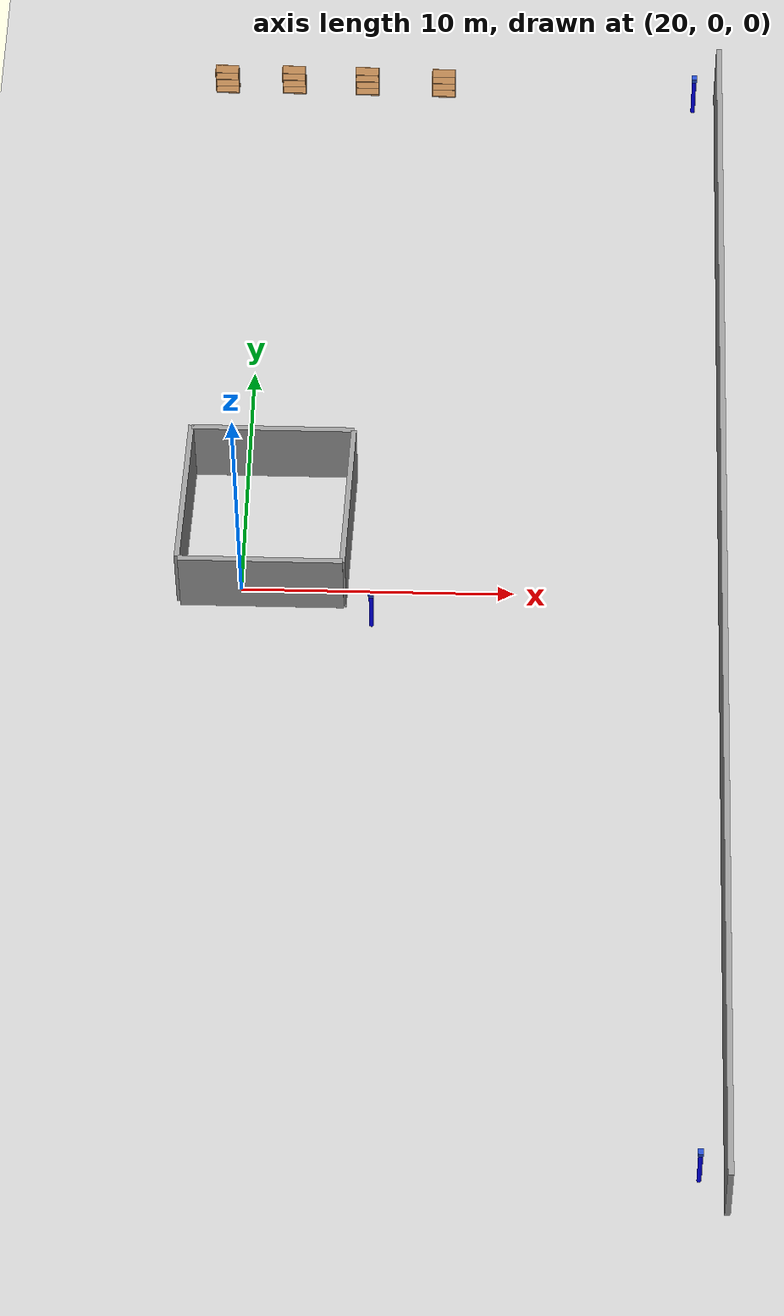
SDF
<sdf version="1.7">
 <world name="default">
  <model name="ground_plane">
   <static>1</static>
   <link name="link">
    <collision name="collision">
     <geometry><plane><normal>0 0 1</normal><size>100 100</size></plane></geometry>
     <surface>
      <contact><collide_bitmask>65535</collide_bitmask></contact>
      <friction><ode><mu>100</mu><mu2>50</mu2></ode></friction>
     </surface>
    </collision>
    <visual name="visual">
     <cast_shadows>0</cast_shadows>
     <geometry><plane><normal>0 0 1</normal><size>100 100</size></plane></geometry>
     <material>
      <script><uri>file://media/materials/scripts/gazebo.material</uri><name>Gazebo/Grey</name></script>
     </material>
    </visual>
   </link>
  </model>
  <model name="grey_wall_long_clone">
   <static>1</static>
   <link name="link">
    <pose>0 0 1.4 0 -0 0</pose>
    <collision name="collision"><geometry><box><size>50 0.2 2.8</size></box></geometry></collision>
    <visual name="visual">
     <cast_shadows>0</cast_shadows>
     <geometry><box><size>50 0.2 2.8</size></box></geometry>
     <material>
      <script>
       <uri>model://grey_wall_long/materials/scripts</uri>
       <uri>model://grey_wall_long/materials/textures</uri>
       <name>vrc/grey_wall_long</name>
      </script>
     </material>
    </visual>
   </link>
   <pose>37.61 -0.557863 0 0 0 -1.56707</pose>
  </model>
  <model name="grey_wall_media_clone_2_clone">
   <static>1</static>
   <link name="link">
    <pose>0 0 1.4 0 -0 0</pose>
    <collision name="collision"><geometry><box><size>6 0.2 2.8</size></box></geometry></collision>
    <visual name="visual">
     <cast_shadows>0</cast_shadows>
     <geometry><box><size>6 0.2 2.8</size></box></geometry>
     <material>
      <script>
       <uri>model://grey_wall_media/materials/scripts</uri>
       <uri>model://grey_wall_media/materials/textures</uri>
       <name>vrc/grey_wall_media</name>
      </script>
     </material>
    </visual>
   </link>
   <pose>20.7771 -0.668211 0.00987 0 -0 0</pose>
  </model>
  <model name="grey_wall_media_clone_2_clone_clone">
   <static>1</static>
   <link name="link">
    <pose>0 0 1.4 0 -0 0</pose>
    <collision name="collision"><geometry><box><size>6 0.2 2.8</size></box></geometry></collision>
    <visual name="visual">
     <cast_shadows>0</cast_shadows>
     <geometry><box><size>6 0.2 2.8</size></box></geometry>
     <material>
      <script>
       <uri>model://grey_wall_media/materials/scripts</uri>
       <uri>model://grey_wall_media/materials/textures</uri>
       <name>vrc/grey_wall_media</name>
      </script>
     </material>
    </visual>
   </link>
   <pose>20.9663 5.32207 0.00987 0 -0 0</pose>
  </model>
  <model name="grey_wall_media_clone_2_clone_clone_0">
   <static>1</static>
   <link name="link">
    <pose>0 0 1.4 0 -0 0</pose>
    <collision name="collision"><geometry><box><size>6 0.2 2.8</size></box></geometry></collision>
    <visual name="visual">
     <cast_shadows>0</cast_shadows>
     <geometry><box><size>6 0.2 2.8</size></box></geometry>
     <material>
      <script>
       <uri>model://grey_wall_media/materials/scripts</uri>
       <uri>model://grey_wall_media/materials/textures</uri>
       <name>vrc/grey_wall_media</name>
      </script>
     </material>
    </visual>
   </link>
   <pose>17.8444 2.39168 0.00987 0 0 -1.60343</pose>
  </model>
  <model name="grey_wall_media_clone_2_clone_clone_0_clone">
   <static>1</static>
   <link name="link">
    <pose>0 0 1.4 0 -0 0</pose>
    <collision name="collision"><geometry><box><size>6 0.2 2.8</size></box></geometry></collision>
    <visual name="visual">
     <cast_shadows>0</cast_shadows>
     <geometry><box><size>6 0.2 2.8</size></box></geometry>
     <material>
      <script>
       <uri>model://grey_wall_media/materials/scripts</uri>
       <uri>model://grey_wall_media/materials/textures</uri>
       <name>vrc/grey_wall_media</name>
      </script>
     </material>
    </visual>
   </link>
   <pose>23.857 2.28002 0.00987 0 0 -1.60343</pose>
  </model>
  <model name="Bookshelf_0">
   <static>1</static>
   <link name="link">
    <inertial><mass>1</mass></inertial>
    <collision name="back">
     <pose>0 0.005 0.6 0 -0 0</pose>
     <geometry><box><size>0.9 0.01 1.2</size></box></geometry>
    </collision>
    <visual name="visual1">
     <pose>0 0.005 0.6 0 -0 0</pose>
     <geometry><box><size>0.9 0.01 1.2</size></box></geometry>
     <material>
      <diffuse>1 1 1 1</diffuse>
      <script><uri>file://media/materials/scripts/gazebo.material</uri><name>Gazebo/Wood</name></script>
      <pbr><metal><albedo_map>model://Bookshelf/bookshelf_diffuse.jpg</albedo_map></metal></pbr>
     </material>
    </visual>
    <collision name="left_side">
     <pose>0.45 -0.195 0.6 0 -0 0</pose>
     <geometry><box><size>0.02 0.4 1.2</size></box></geometry>
    </collision>
    <visual name="visual2">
     <pose>0.45 -0.195 0.6 0 -0 0</pose>
     <geometry><box><size>0.02 0.4 1.2</size></box></geometry>
     <material>
      <diffuse>1 1 1 1</diffuse>
      <script><uri>file://media/materials/scripts/gazebo.material</uri><name>Gazebo/Wood</name></script>
      <pbr><metal><albedo_map>model://Bookshelf/bookshelf_diffuse.jpg</albedo_map></metal></pbr>
     </material>
    </visual>
    <collision name="right_side">
     <pose>-0.45 -0.195 0.6 0 -0 0</pose>
     <geometry><box><size>0.02 0.4 1.2</size></box></geometry>
    </collision>
    <visual name="visual3">
     <pose>-0.45 -0.195 0.6 0 -0 0</pose>
     <geometry><box><size>0.02 0.4 1.2</size></box></geometry>
     <material>
      <diffuse>1 1 1 1</diffuse>
      <script><uri>file://media/materials/scripts/gazebo.material</uri><name>Gazebo/Wood</name></script>
      <pbr><metal><albedo_map>model://Bookshelf/bookshelf_diffuse.jpg</albedo_map></metal></pbr>
     </material>
    </visual>
    <collision name="bottom">
     <pose>0 -0.195 0.03 0 -0 0</pose>
     <geometry><box><size>0.88 0.4 0.06</size></box></geometry>
    </collision>
    <visual name="visual4">
     <pose>0 -0.195 0.03 0 -0 0</pose>
     <geometry><box><size>0.88 0.4 0.06</size></box></geometry>
     <material>
      <diffuse>1 1 1 1</diffuse>
      <script><uri>file://media/materials/scripts/gazebo.material</uri><name>Gazebo/Wood</name></script>
      <pbr><metal><albedo_map>model://Bookshelf/bookshelf_diffuse.jpg</albedo_map></metal></pbr>
     </material>
    </visual>
    <collision name="top">
     <pose>0 -0.195 1.19 0 -0 0</pose>
     <geometry><box><size>0.88 0.4 0.02</size></box></geometry>
    </collision>
    <visual name="visual5">
     <pose>0 -0.195 1.19 0 -0 0</pose>
     <geometry><box><size>0.88 0.4 0.02</size></box></geometry>
     <material>
      <diffuse>1 1 1 1</diffuse>
      <script><uri>file://media/materials/scripts/gazebo.material</uri><name>Gazebo/Wood</name></script>
      <pbr><metal><albedo_map>model://Bookshelf/bookshelf_diffuse.jpg</albedo_map></metal></pbr>
     </material>
    </visual>
    <collision name="low_shelf">
     <pose>0 -0.195 0.43 0 -0 0</pose>
     <geometry><box><size>0.88 0.4 0.02</size></box></geometry>
    </collision>
    <visual name="visual6">
     <pose>0 -0.195 0.43 0 -0 0</pose>
     <geometry><box><size>0.88 0.4 0.02</size></box></geometry>
     <material>
      <diffuse>1 1 1 1</diffuse>
      <script><uri>file://media/materials/scripts/gazebo.material</uri><name>Gazebo/Wood</name></script>
      <pbr><metal><albedo_map>model://Bookshelf/bookshelf_diffuse.jpg</albedo_map></metal></pbr>
     </material>
    </visual>
    <collision name="high_shelf">
     <pose>0 -0.195 0.8 0 -0 0</pose>
     <geometry><box><size>0.88 0.4 0.02</size></box></geometry>
    </collision>
    <visual name="visual7">
     <pose>0 -0.195 0.8 0 -0 0</pose>
     <geometry><box><size>0.88 0.4 0.02</size></box></geometry>
     <material>
      <diffuse>1 1 1 1</diffuse>
      <script><uri>file://media/materials/scripts/gazebo.material</uri><name>Gazebo/Wood</name></script>
      <pbr><metal><albedo_map>model://Bookshelf/bookshelf_diffuse.jpg</albedo_map></metal></pbr>
     </material>
    </visual>
   </link>
   <pose>26.7566 24.5208 0 0 -0 0</pose>
  </model>
  <model name="Bookshelf_0_clone">
   <static>1</static>
   <link name="link">
    <inertial><mass>1</mass></inertial>
    <collision name="back">
     <pose>0 0.005 0.6 0 -0 0</pose>
     <geometry><box><size>0.9 0.01 1.2</size></box></geometry>
    </collision>
    <visual name="visual1">
     <pose>0 0.005 0.6 0 -0 0</pose>
     <geometry><box><size>0.9 0.01 1.2</size></box></geometry>
     <material>
      <diffuse>1 1 1 1</diffuse>
      <script><uri>file://media/materials/scripts/gazebo.material</uri><name>Gazebo/Wood</name></script>
      <pbr><metal><albedo_map>model://Bookshelf/bookshelf_diffuse.jpg</albedo_map></metal></pbr>
     </material>
    </visual>
    <collision name="left_side">
     <pose>0.45 -0.195 0.6 0 -0 0</pose>
     <geometry><box><size>0.02 0.4 1.2</size></box></geometry>
    </collision>
    <visual name="visual2">
     <pose>0.45 -0.195 0.6 0 -0 0</pose>
     <geometry><box><size>0.02 0.4 1.2</size></box></geometry>
     <material>
      <diffuse>1 1 1 1</diffuse>
      <script><uri>file://media/materials/scripts/gazebo.material</uri><name>Gazebo/Wood</name></script>
      <pbr><metal><albedo_map>model://Bookshelf/bookshelf_diffuse.jpg</albedo_map></metal></pbr>
     </material>
    </visual>
    <collision name="right_side">
     <pose>-0.45 -0.195 0.6 0 -0 0</pose>
     <geometry><box><size>0.02 0.4 1.2</size></box></geometry>
    </collision>
    <visual name="visual3">
     <pose>-0.45 -0.195 0.6 0 -0 0</pose>
     <geometry><box><size>0.02 0.4 1.2</size></box></geometry>
     <material>
      <diffuse>1 1 1 1</diffuse>
      <script><uri>file://media/materials/scripts/gazebo.material</uri><name>Gazebo/Wood</name></script>
      <pbr><metal><albedo_map>model://Bookshelf/bookshelf_diffuse.jpg</albedo_map></metal></pbr>
     </material>
    </visual>
    <collision name="bottom">
     <pose>0 -0.195 0.03 0 -0 0</pose>
     <geometry><box><size>0.88 0.4 0.06</size></box></geometry>
    </collision>
    <visual name="visual4">
     <pose>0 -0.195 0.03 0 -0 0</pose>
     <geometry><box><size>0.88 0.4 0.06</size></box></geometry>
     <material>
      <diffuse>1 1 1 1</diffuse>
      <script><uri>file://media/materials/scripts/gazebo.material</uri><name>Gazebo/Wood</name></script>
      <pbr><metal><albedo_map>model://Bookshelf/bookshelf_diffuse.jpg</albedo_map></metal></pbr>
     </material>
    </visual>
    <collision name="top">
     <pose>0 -0.195 1.19 0 -0 0</pose>
     <geometry><box><size>0.88 0.4 0.02</size></box></geometry>
    </collision>
    <visual name="visual5">
     <pose>0 -0.195 1.19 0 -0 0</pose>
     <geometry><box><size>0.88 0.4 0.02</size></box></geometry>
     <material>
      <diffuse>1 1 1 1</diffuse>
      <script><uri>file://media/materials/scripts/gazebo.material</uri><name>Gazebo/Wood</name></script>
      <pbr><metal><albedo_map>model://Bookshelf/bookshelf_diffuse.jpg</albedo_map></metal></pbr>
     </material>
    </visual>
    <collision name="low_shelf">
     <pose>0 -0.195 0.43 0 -0 0</pose>
     <geometry><box><size>0.88 0.4 0.02</size></box></geometry>
    </collision>
    <visual name="visual6">
     <pose>0 -0.195 0.43 0 -0 0</pose>
     <geometry><box><size>0.88 0.4 0.02</size></box></geometry>
     <material>
      <diffuse>1 1 1 1</diffuse>
      <script><uri>file://media/materials/scripts/gazebo.material</uri><name>Gazebo/Wood</name></script>
      <pbr><metal><albedo_map>model://Bookshelf/bookshelf_diffuse.jpg</albedo_map></metal></pbr>
     </material>
    </visual>
    <collision name="high_shelf">
     <pose>0 -0.195 0.8 0 -0 0</pose>
     <geometry><box><size>0.88 0.4 0.02</size></box></geometry>
    </collision>
    <visual name="visual7">
     <pose>0 -0.195 0.8 0 -0 0</pose>
     <geometry><box><size>0.88 0.4 0.02</size></box></geometry>
     <material>
      <diffuse>1 1 1 1</diffuse>
      <script><uri>file://media/materials/scripts/gazebo.material</uri><name>Gazebo/Wood</name></script>
      <pbr><metal><albedo_map>model://Bookshelf/bookshelf_diffuse.jpg</albedo_map></metal></pbr>
     </material>
    </visual>
   </link>
   <pose>23.7282 24.54 0 0 -0 0</pose>
  </model>
  <model name="Bookshelf_0_clone_0">
   <static>1</static>
   <link name="link">
    <inertial><mass>1</mass></inertial>
    <collision name="back">
     <pose>0 0.005 0.6 0 -0 0</pose>
     <geometry><box><size>0.9 0.01 1.2</size></box></geometry>
    </collision>
    <visual name="visual1">
     <pose>0 0.005 0.6 0 -0 0</pose>
     <geometry><box><size>0.9 0.01 1.2</size></box></geometry>
     <material>
      <diffuse>1 1 1 1</diffuse>
      <script><uri>file://media/materials/scripts/gazebo.material</uri><name>Gazebo/Wood</name></script>
      <pbr><metal><albedo_map>model://Bookshelf/bookshelf_diffuse.jpg</albedo_map></metal></pbr>
     </material>
    </visual>
    <collision name="left_side">
     <pose>0.45 -0.195 0.6 0 -0 0</pose>
     <geometry><box><size>0.02 0.4 1.2</size></box></geometry>
    </collision>
    <visual name="visual2">
     <pose>0.45 -0.195 0.6 0 -0 0</pose>
     <geometry><box><size>0.02 0.4 1.2</size></box></geometry>
     <material>
      <diffuse>1 1 1 1</diffuse>
      <script><uri>file://media/materials/scripts/gazebo.material</uri><name>Gazebo/Wood</name></script>
      <pbr><metal><albedo_map>model://Bookshelf/bookshelf_diffuse.jpg</albedo_map></metal></pbr>
     </material>
    </visual>
    <collision name="right_side">
     <pose>-0.45 -0.195 0.6 0 -0 0</pose>
     <geometry><box><size>0.02 0.4 1.2</size></box></geometry>
    </collision>
    <visual name="visual3">
     <pose>-0.45 -0.195 0.6 0 -0 0</pose>
     <geometry><box><size>0.02 0.4 1.2</size></box></geometry>
     <material>
      <diffuse>1 1 1 1</diffuse>
      <script><uri>file://media/materials/scripts/gazebo.material</uri><name>Gazebo/Wood</name></script>
      <pbr><metal><albedo_map>model://Bookshelf/bookshelf_diffuse.jpg</albedo_map></metal></pbr>
     </material>
    </visual>
    <collision name="bottom">
     <pose>0 -0.195 0.03 0 -0 0</pose>
     <geometry><box><size>0.88 0.4 0.06</size></box></geometry>
    </collision>
    <visual name="visual4">
     <pose>0 -0.195 0.03 0 -0 0</pose>
     <geometry><box><size>0.88 0.4 0.06</size></box></geometry>
     <material>
      <diffuse>1 1 1 1</diffuse>
      <script><uri>file://media/materials/scripts/gazebo.material</uri><name>Gazebo/Wood</name></script>
      <pbr><metal><albedo_map>model://Bookshelf/bookshelf_diffuse.jpg</albedo_map></metal></pbr>
     </material>
    </visual>
    <collision name="top">
     <pose>0 -0.195 1.19 0 -0 0</pose>
     <geometry><box><size>0.88 0.4 0.02</size></box></geometry>
    </collision>
    <visual name="visual5">
     <pose>0 -0.195 1.19 0 -0 0</pose>
     <geometry><box><size>0.88 0.4 0.02</size></box></geometry>
     <material>
      <diffuse>1 1 1 1</diffuse>
      <script><uri>file://media/materials/scripts/gazebo.material</uri><name>Gazebo/Wood</name></script>
      <pbr><metal><albedo_map>model://Bookshelf/bookshelf_diffuse.jpg</albedo_map></metal></pbr>
     </material>
    </visual>
    <collision name="low_shelf">
     <pose>0 -0.195 0.43 0 -0 0</pose>
     <geometry><box><size>0.88 0.4 0.02</size></box></geometry>
    </collision>
    <visual name="visual6">
     <pose>0 -0.195 0.43 0 -0 0</pose>
     <geometry><box><size>0.88 0.4 0.02</size></box></geometry>
     <material>
      <diffuse>1 1 1 1</diffuse>
      <script><uri>file://media/materials/scripts/gazebo.material</uri><name>Gazebo/Wood</name></script>
      <pbr><metal><albedo_map>model://Bookshelf/bookshelf_diffuse.jpg</albedo_map></metal></pbr>
     </material>
    </visual>
    <collision name="high_shelf">
     <pose>0 -0.195 0.8 0 -0 0</pose>
     <geometry><box><size>0.88 0.4 0.02</size></box></geometry>
    </collision>
    <visual name="visual7">
     <pose>0 -0.195 0.8 0 -0 0</pose>
     <geometry><box><size>0.88 0.4 0.02</size></box></geometry>
     <material>
      <diffuse>1 1 1 1</diffuse>
      <script><uri>file://media/materials/scripts/gazebo.material</uri><name>Gazebo/Wood</name></script>
      <pbr><metal><albedo_map>model://Bookshelf/bookshelf_diffuse.jpg</albedo_map></metal></pbr>
     </material>
    </visual>
   </link>
   <pose>20.8419 24.5504 0 0 -0 0</pose>
  </model>
  <model name="Bookshelf_0_clone_1">
   <static>1</static>
   <link name="link">
    <inertial><mass>1</mass></inertial>
    <collision name="back">
     <pose>0 0.005 0.6 0 -0 0</pose>
     <geometry><box><size>0.9 0.01 1.2</size></box></geometry>
    </collision>
    <visual name="visual1">
     <pose>0 0.005 0.6 0 -0 0</pose>
     <geometry><box><size>0.9 0.01 1.2</size></box></geometry>
     <material>
      <diffuse>1 1 1 1</diffuse>
      <script><uri>file://media/materials/scripts/gazebo.material</uri><name>Gazebo/Wood</name></script>
      <pbr><metal><albedo_map>model://Bookshelf/bookshelf_diffuse.jpg</albedo_map></metal></pbr>
     </material>
    </visual>
    <collision name="left_side">
     <pose>0.45 -0.195 0.6 0 -0 0</pose>
     <geometry><box><size>0.02 0.4 1.2</size></box></geometry>
    </collision>
    <visual name="visual2">
     <pose>0.45 -0.195 0.6 0 -0 0</pose>
     <geometry><box><size>0.02 0.4 1.2</size></box></geometry>
     <material>
      <diffuse>1 1 1 1</diffuse>
      <script><uri>file://media/materials/scripts/gazebo.material</uri><name>Gazebo/Wood</name></script>
      <pbr><metal><albedo_map>model://Bookshelf/bookshelf_diffuse.jpg</albedo_map></metal></pbr>
     </material>
    </visual>
    <collision name="right_side">
     <pose>-0.45 -0.195 0.6 0 -0 0</pose>
     <geometry><box><size>0.02 0.4 1.2</size></box></geometry>
    </collision>
    <visual name="visual3">
     <pose>-0.45 -0.195 0.6 0 -0 0</pose>
     <geometry><box><size>0.02 0.4 1.2</size></box></geometry>
     <material>
      <diffuse>1 1 1 1</diffuse>
      <script><uri>file://media/materials/scripts/gazebo.material</uri><name>Gazebo/Wood</name></script>
      <pbr><metal><albedo_map>model://Bookshelf/bookshelf_diffuse.jpg</albedo_map></metal></pbr>
     </material>
    </visual>
    <collision name="bottom">
     <pose>0 -0.195 0.03 0 -0 0</pose>
     <geometry><box><size>0.88 0.4 0.06</size></box></geometry>
    </collision>
    <visual name="visual4">
     <pose>0 -0.195 0.03 0 -0 0</pose>
     <geometry><box><size>0.88 0.4 0.06</size></box></geometry>
     <material>
      <diffuse>1 1 1 1</diffuse>
      <script><uri>file://media/materials/scripts/gazebo.material</uri><name>Gazebo/Wood</name></script>
      <pbr><metal><albedo_map>model://Bookshelf/bookshelf_diffuse.jpg</albedo_map></metal></pbr>
     </material>
    </visual>
    <collision name="top">
     <pose>0 -0.195 1.19 0 -0 0</pose>
     <geometry><box><size>0.88 0.4 0.02</size></box></geometry>
    </collision>
    <visual name="visual5">
     <pose>0 -0.195 1.19 0 -0 0</pose>
     <geometry><box><size>0.88 0.4 0.02</size></box></geometry>
     <material>
      <diffuse>1 1 1 1</diffuse>
      <script><uri>file://media/materials/scripts/gazebo.material</uri><name>Gazebo/Wood</name></script>
      <pbr><metal><albedo_map>model://Bookshelf/bookshelf_diffuse.jpg</albedo_map></metal></pbr>
     </material>
    </visual>
    <collision name="low_shelf">
     <pose>0 -0.195 0.43 0 -0 0</pose>
     <geometry><box><size>0.88 0.4 0.02</size></box></geometry>
    </collision>
    <visual name="visual6">
     <pose>0 -0.195 0.43 0 -0 0</pose>
     <geometry><box><size>0.88 0.4 0.02</size></box></geometry>
     <material>
      <diffuse>1 1 1 1</diffuse>
      <script><uri>file://media/materials/scripts/gazebo.material</uri><name>Gazebo/Wood</name></script>
      <pbr><metal><albedo_map>model://Bookshelf/bookshelf_diffuse.jpg</albedo_map></metal></pbr>
     </material>
    </visual>
    <collision name="high_shelf">
     <pose>0 -0.195 0.8 0 -0 0</pose>
     <geometry><box><size>0.88 0.4 0.02</size></box></geometry>
    </collision>
    <visual name="visual7">
     <pose>0 -0.195 0.8 0 -0 0</pose>
     <geometry><box><size>0.88 0.4 0.02</size></box></geometry>
     <material>
      <diffuse>1 1 1 1</diffuse>
      <script><uri>file://media/materials/scripts/gazebo.material</uri><name>Gazebo/Wood</name></script>
      <pbr><metal><albedo_map>model://Bookshelf/bookshelf_diffuse.jpg</albedo_map></metal></pbr>
     </material>
    </visual>
   </link>
   <pose>18.2097 24.5275 0 0 -0 0</pose>
  </model>
  <model name="UWB_0">
   <link name="link_1">
    <inertial>
     <mass>1</mass>
     <inertia><ixx>0.145833</ixx><ixy>0</ixy><ixz>0</ixz><iyy>0.145833</iyy><iyz>0</iyz><izz>0.125</izz></inertia>
    </inertial>
    <pose>0 0 0.95 0 -0 0</pose>
    <visual name="visual">
     <geometry><cylinder><radius>0.08</radius><length>1.9</length></cylinder></geometry>
     <material>
      <lighting>1</lighting>
      <script><uri>file://media/materials/scripts/gazebo.material</uri><name>Gazebo/Grey</name></script>
      <shader type="pixel"><normal_map>__default__</normal_map></shader>
      <ambient>0 0 1 1</ambient>
      <diffuse>0 0 1 1</diffuse>
      <specular>0 0 1 1</specular>
      <emissive>0 0 1 1</emissive>
     </material>
    </visual>
    <collision name="collision">
     <geometry><cylinder><radius>0.08</radius><length>1.9</length></cylinder></geometry>
     <surface>
      <friction>
       <ode><mu>1</mu><mu2>1</mu2><fdir1>0 0 0</fdir1><slip1>0</slip1><slip2>0</slip2></ode>
       <torsional>
        <coefficient>1</coefficient>
        <patch_radius>0</patch_radius>
        <surface_radius>0</surface_radius>
        <use_patch_radius>1</use_patch_radius>
        <ode><slip>0</slip></ode>
       </torsional>
      </friction>
      <bounce><restitution_coefficient>0</restitution_coefficient><threshold>1e+06</threshold></bounce>
      <contact>
       <collide_without_contact>0</collide_without_contact>
       <collide_without_contact_bitmask>1</collide_without_contact_bitmask>
       <collide_bitmask>1</collide_bitmask>
       <ode>
        <soft_cfm>0</soft_cfm>
        <soft_erp>0.2</soft_erp>
        <kp>1e+13</kp>
        <kd>1</kd>
        <max_vel>0.01</max_vel>
        <min_depth>0</min_depth>
       </ode>
       <bullet>
        <split_impulse>1</split_impulse>
        <split_impulse_penetration_threshold>-0.01</split_impulse_penetration_threshold>
        <soft_cfm>0</soft_cfm>
        <soft_erp>0.2</soft_erp>
        <kp>1e+13</kp>
        <kd>1</kd>
       </bullet>
      </contact>
     </surface>
    </collision>
   </link>
   <link name="link_2">
    <inertial>
     <mass>1</mass>
     <inertia>
      <ixx>0.166667</ixx>
      <ixy>0</ixy>
      <ixz>0</ixz>
      <iyy>0.166667</iyy>
      <iyz>0</iyz>
      <izz>0.166667</izz>
     </inertia>
    </inertial>
    <pose>0 0 1.9 0 -0 0</pose>
    <visual name="visual">
     <geometry><box><size>0.2 0.2 0.2</size></box></geometry>
     <material>
      <lighting>1</lighting>
      <script><uri>file://media/materials/scripts/gazebo.material</uri><name>Gazebo/Blue</name></script>
      <shader type="pixel"><normal_map>__default__</normal_map></shader>
      <ambient>1 0 0 1</ambient>
      <diffuse>1 0 0 1</diffuse>
      <specular>1 0 0 1</specular>
      <emissive>1 0 0 1</emissive>
     </material>
    </visual>
    <collision name="collision">
     <geometry><box><size>0.2 0.2 0.2</size></box></geometry>
     <surface>
      <friction>
       <ode><mu>1</mu><mu2>1</mu2><fdir1>0 0 0</fdir1><slip1>0</slip1><slip2>0</slip2></ode>
       <torsional>
        <coefficient>1</coefficient>
        <patch_radius>0</patch_radius>
        <surface_radius>0</surface_radius>
        <use_patch_radius>1</use_patch_radius>
        <ode><slip>0</slip></ode>
       </torsional>
      </friction>
      <bounce><restitution_coefficient>0</restitution_coefficient><threshold>1e+06</threshold></bounce>
      <contact>
       <collide_without_contact>0</collide_without_contact>
       <collide_without_contact_bitmask>1</collide_without_contact_bitmask>
       <collide_bitmask>1</collide_bitmask>
       <ode>
        <soft_cfm>0</soft_cfm>
        <soft_erp>0.2</soft_erp>
        <kp>1e+13</kp>
        <kd>1</kd>
        <max_vel>0.01</max_vel>
        <min_depth>0</min_depth>
       </ode>
       <bullet>
        <split_impulse>1</split_impulse>
        <split_impulse_penetration_threshold>-0.01</split_impulse_penetration_threshold>
        <soft_cfm>0</soft_cfm>
        <soft_erp>0.2</soft_erp>
        <kp>1e+13</kp>
        <kd>1</kd>
       </bullet>
      </contact>
     </surface>
    </collision>
   </link>
   <static>1</static>
   <pose>36.5889 23.6241 0.016212 0 -0 0</pose>
  </model>
  <model name="UWB_4">
   <link name="link_1">
    <inertial>
     <mass>1</mass>
     <inertia><ixx>0.145833</ixx><ixy>0</ixy><ixz>0</ixz><iyy>0.145833</iyy><iyz>0</iyz><izz>0.125</izz></inertia>
    </inertial>
    <pose>0 0 0.95 0 -0 0</pose>
    <visual name="visual">
     <geometry><cylinder><radius>0.08</radius><length>1.9</length></cylinder></geometry>
     <material>
      <lighting>1</lighting>
      <script><uri>file://media/materials/scripts/gazebo.material</uri><name>Gazebo/Grey</name></script>
      <shader type="pixel"><normal_map>__default__</normal_map></shader>
      <ambient>0 0 1 1</ambient>
      <diffuse>0 0 1 1</diffuse>
      <specular>0 0 1 1</specular>
      <emissive>0 0 1 1</emissive>
     </material>
    </visual>
    <collision name="collision">
     <geometry><cylinder><radius>0.08</radius><length>1.9</length></cylinder></geometry>
     <surface>
      <friction>
       <ode><mu>1</mu><mu2>1</mu2><fdir1>0 0 0</fdir1><slip1>0</slip1><slip2>0</slip2></ode>
       <torsional>
        <coefficient>1</coefficient>
        <patch_radius>0</patch_radius>
        <surface_radius>0</surface_radius>
        <use_patch_radius>1</use_patch_radius>
        <ode><slip>0</slip></ode>
       </torsional>
      </friction>
      <bounce><restitution_coefficient>0</restitution_coefficient><threshold>1e+06</threshold></bounce>
      <contact>
       <collide_without_contact>0</collide_without_contact>
       <collide_without_contact_bitmask>1</collide_without_contact_bitmask>
       <collide_bitmask>1</collide_bitmask>
       <ode>
        <soft_cfm>0</soft_cfm>
        <soft_erp>0.2</soft_erp>
        <kp>1e+13</kp>
        <kd>1</kd>
        <max_vel>0.01</max_vel>
        <min_depth>0</min_depth>
       </ode>
       <bullet>
        <split_impulse>1</split_impulse>
        <split_impulse_penetration_threshold>-0.01</split_impulse_penetration_threshold>
        <soft_cfm>0</soft_cfm>
        <soft_erp>0.2</soft_erp>
        <kp>1e+13</kp>
        <kd>1</kd>
       </bullet>
      </contact>
     </surface>
    </collision>
   </link>
   <link name="link_2">
    <inertial>
     <mass>1</mass>
     <inertia>
      <ixx>0.166667</ixx>
      <ixy>0</ixy>
      <ixz>0</ixz>
      <iyy>0.166667</iyy>
      <iyz>0</iyz>
      <izz>0.166667</izz>
     </inertia>
    </inertial>
    <pose>0 0 1.9 0 -0 0</pose>
    <visual name="visual">
     <geometry><box><size>0.2 0.2 0.2</size></box></geometry>
     <material>
      <lighting>1</lighting>
      <script><uri>file://media/materials/scripts/gazebo.material</uri><name>Gazebo/Blue</name></script>
      <shader type="pixel"><normal_map>__default__</normal_map></shader>
      <ambient>1 0 0 1</ambient>
      <diffuse>1 0 0 1</diffuse>
      <specular>1 0 0 1</specular>
      <emissive>1 0 0 1</emissive>
     </material>
    </visual>
    <collision name="collision">
     <geometry><box><size>0.2 0.2 0.2</size></box></geometry>
     <surface>
      <friction>
       <ode><mu>1</mu><mu2>1</mu2><fdir1>0 0 0</fdir1><slip1>0</slip1><slip2>0</slip2></ode>
       <torsional>
        <coefficient>1</coefficient>
        <patch_radius>0</patch_radius>
        <surface_radius>0</surface_radius>
        <use_patch_radius>1</use_patch_radius>
        <ode><slip>0</slip></ode>
       </torsional>
      </friction>
      <bounce><restitution_coefficient>0</restitution_coefficient><threshold>1e+06</threshold></bounce>
      <contact>
       <collide_without_contact>0</collide_without_contact>
       <collide_without_contact_bitmask>1</collide_without_contact_bitmask>
       <collide_bitmask>1</collide_bitmask>
       <ode>
        <soft_cfm>0</soft_cfm>
        <soft_erp>0.2</soft_erp>
        <kp>1e+13</kp>
        <kd>1</kd>
        <max_vel>0.01</max_vel>
        <min_depth>0</min_depth>
       </ode>
       <bullet>
        <split_impulse>1</split_impulse>
        <split_impulse_penetration_threshold>-0.01</split_impulse_penetration_threshold>
        <soft_cfm>0</soft_cfm>
        <soft_erp>0.2</soft_erp>
        <kp>1e+13</kp>
        <kd>1</kd>
       </bullet>
      </contact>
     </surface>
    </collision>
   </link>
   <static>1</static>
   <pose>36.7462 -24.2457 0 0 -0 0</pose>
  </model>
  <model name="UWB_5">
   <link name="link_1">
    <inertial>
     <mass>1</mass>
     <inertia><ixx>0.145833</ixx><ixy>0</ixy><ixz>0</ixz><iyy>0.145833</iyy><iyz>0</iyz><izz>0.125</izz></inertia>
    </inertial>
    <pose>0 0 0.95 0 -0 0</pose>
    <visual name="visual">
     <geometry><cylinder><radius>0.08</radius><length>1.9</length></cylinder></geometry>
     <material>
      <lighting>1</lighting>
      <script><uri>file://media/materials/scripts/gazebo.material</uri><name>Gazebo/Grey</name></script>
      <shader type="pixel"><normal_map>__default__</normal_map></shader>
      <ambient>0 0 1 1</ambient>
      <diffuse>0 0 1 1</diffuse>
      <specular>0 0 1 1</specular>
      <emissive>0 0 1 1</emissive>
     </material>
    </visual>
    <collision name="collision">
     <geometry><cylinder><radius>0.08</radius><length>1.9</length></cylinder></geometry>
     <surface>
      <friction>
       <ode><mu>1</mu><mu2>1</mu2><fdir1>0 0 0</fdir1><slip1>0</slip1><slip2>0</slip2></ode>
       <torsional>
        <coefficient>1</coefficient>
        <patch_radius>0</patch_radius>
        <surface_radius>0</surface_radius>
        <use_patch_radius>1</use_patch_radius>
        <ode><slip>0</slip></ode>
       </torsional>
      </friction>
      <bounce><restitution_coefficient>0</restitution_coefficient><threshold>1e+06</threshold></bounce>
      <contact>
       <collide_without_contact>0</collide_without_contact>
       <collide_without_contact_bitmask>1</collide_without_contact_bitmask>
       <collide_bitmask>1</collide_bitmask>
       <ode>
        <soft_cfm>0</soft_cfm>
        <soft_erp>0.2</soft_erp>
        <kp>1e+13</kp>
        <kd>1</kd>
        <max_vel>0.01</max_vel>
        <min_depth>0</min_depth>
       </ode>
       <bullet>
        <split_impulse>1</split_impulse>
        <split_impulse_penetration_threshold>-0.01</split_impulse_penetration_threshold>
        <soft_cfm>0</soft_cfm>
        <soft_erp>0.2</soft_erp>
        <kp>1e+13</kp>
        <kd>1</kd>
       </bullet>
      </contact>
     </surface>
    </collision>
   </link>
   <link name="link_2">
    <inertial>
     <mass>1</mass>
     <inertia>
      <ixx>0.166667</ixx>
      <ixy>0</ixy>
      <ixz>0</ixz>
      <iyy>0.166667</iyy>
      <iyz>0</iyz>
      <izz>0.166667</izz>
     </inertia>
    </inertial>
    <pose>0 0 1.9 0 -0 0</pose>
    <visual name="visual">
     <geometry><box><size>0.2 0.2 0.2</size></box></geometry>
     <material>
      <lighting>1</lighting>
      <script><uri>file://media/materials/scripts/gazebo.material</uri><name>Gazebo/Blue</name></script>
      <shader type="pixel"><normal_map>__default__</normal_map></shader>
      <ambient>1 0 0 1</ambient>
      <diffuse>1 0 0 1</diffuse>
      <specular>1 0 0 1</specular>
      <emissive>1 0 0 1</emissive>
     </material>
    </visual>
    <collision name="collision">
     <geometry><box><size>0.2 0.2 0.2</size></box></geometry>
     <surface>
      <friction>
       <ode><mu>1</mu><mu2>1</mu2><fdir1>0 0 0</fdir1><slip1>0</slip1><slip2>0</slip2></ode>
       <torsional>
        <coefficient>1</coefficient>
        <patch_radius>0</patch_radius>
        <surface_radius>0</surface_radius>
        <use_patch_radius>1</use_patch_radius>
        <ode><slip>0</slip></ode>
       </torsional>
      </friction>
      <bounce><restitution_coefficient>0</restitution_coefficient><threshold>1e+06</threshold></bounce>
      <contact>
       <collide_without_contact>0</collide_without_contact>
       <collide_without_contact_bitmask>1</collide_without_contact_bitmask>
       <collide_bitmask>1</collide_bitmask>
       <ode>
        <soft_cfm>0</soft_cfm>
        <soft_erp>0.2</soft_erp>
        <kp>1e+13</kp>
        <kd>1</kd>
        <max_vel>0.01</max_vel>
        <min_depth>0</min_depth>
       </ode>
       <bullet>
        <split_impulse>1</split_impulse>
        <split_impulse_penetration_threshold>-0.01</split_impulse_penetration_threshold>
        <soft_cfm>0</soft_cfm>
        <soft_erp>0.2</soft_erp>
        <kp>1e+13</kp>
        <kd>1</kd>
       </bullet>
      </contact>
     </surface>
    </collision>
   </link>
   <static>1</static>
   <pose>24.8246 -1.49044 0 0 -0 0</pose>
  </model>
 </world>
</sdf>
